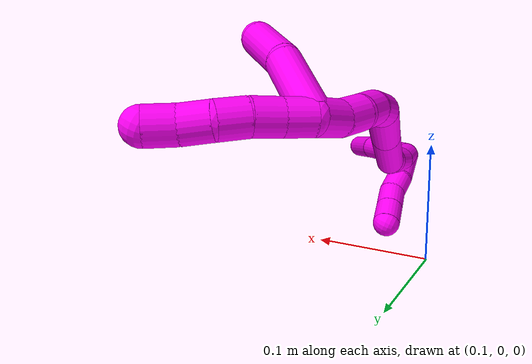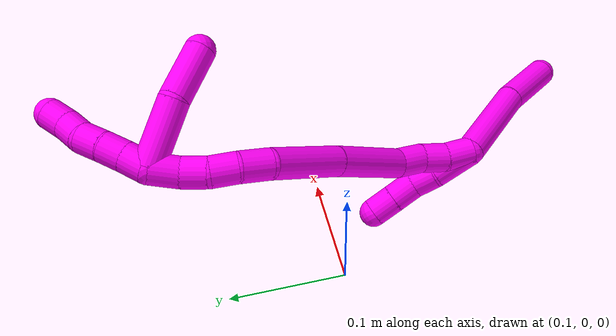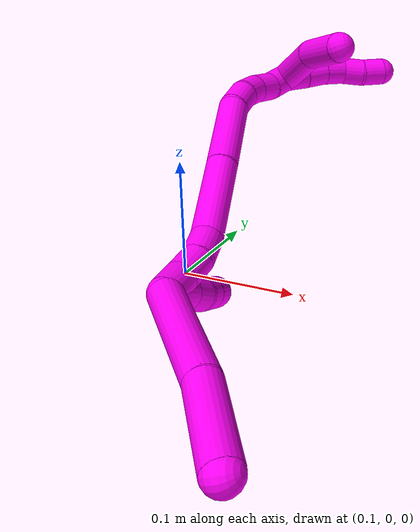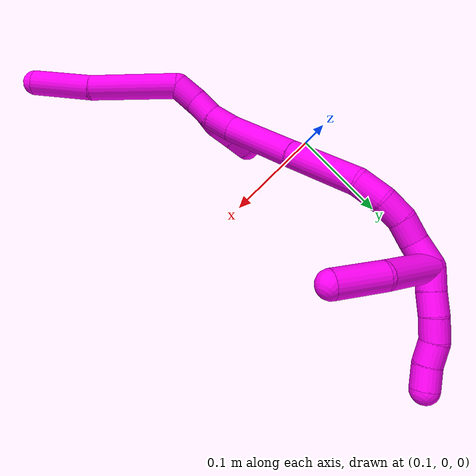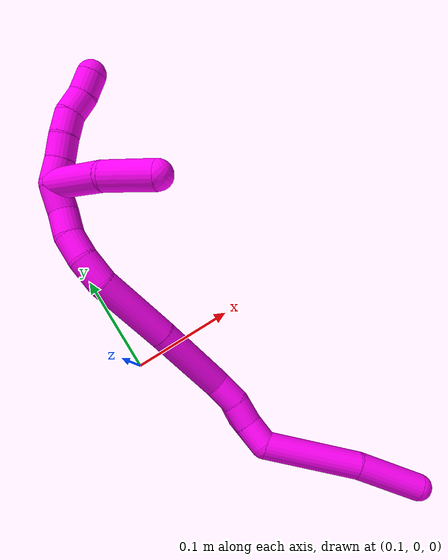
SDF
<sdf version="1.7">
 <world name="default">
  <model name="10">
   <static>0</static>
   <link name="10">
    <collision name="collision-cylinder-e_1_2_8">
     <pose>0.01236 -0.03577 0.022661 1.00611 0.284015 0.157021</pose>
     <geometry><cylinder><radius>0.0125</radius><length>0.088222</length></cylinder></geometry>
     <surface>
      <friction><ode><mu>1.16</mu><mu2>1.16</mu2><slip1>0</slip1><slip2>0</slip2></ode></friction>
      <contact><ode><kp>1e+06</kp><kd>1</kd><max_vel>0</max_vel><min_depth>0.001</min_depth></ode></contact>
     </surface>
    </collision>
    <visual name="visual-cylinder-e_1_2_8">
     <pose>0.01236 -0.03577 0.022661 1.00611 0.284015 0.157021</pose>
     <geometry><cylinder><radius>0.0125</radius><length>0.088222</length></cylinder></geometry>
     <material><ambient>1 0 0.964706 1</ambient></material>
    </visual>
    <collision name="collision-cylinder-e_2_8_6">
     <pose>0.03397 -0.098508 0.05721 1.15558 0.3041 0.199159</pose>
     <geometry><cylinder><radius>0.0125</radius><length>0.061778</length></cylinder></geometry>
     <surface>
      <friction><ode><mu>1.16</mu><mu2>1.16</mu2><slip1>0</slip1><slip2>0</slip2></ode></friction>
      <contact><ode><kp>1e+06</kp><kd>1</kd><max_vel>0</max_vel><min_depth>0.001</min_depth></ode></contact>
     </surface>
    </collision>
    <visual name="visual-cylinder-e_2_8_6">
     <pose>0.03397 -0.098508 0.05721 1.15558 0.3041 0.199159</pose>
     <geometry><cylinder><radius>0.0125</radius><length>0.061778</length></cylinder></geometry>
     <material><ambient>1 0 0.964706 1</ambient></material>
    </visual>
    <collision name="collision-cylinder-e_1_2_9">
     <pose>0.008755 0.015609 -0.002976 -1.75921 0.503577 -0.602916</pose>
     <geometry><cylinder><radius>0.0125</radius><length>0.036284</length></cylinder></geometry>
     <surface>
      <friction><ode><mu>1.16</mu><mu2>1.16</mu2><slip1>0</slip1><slip2>0</slip2></ode></friction>
      <contact><ode><kp>1e+06</kp><kd>1</kd><max_vel>0</max_vel><min_depth>0.001</min_depth></ode></contact>
     </surface>
    </collision>
    <visual name="visual-cylinder-e_1_2_9">
     <pose>0.008755 0.015609 -0.002976 -1.75921 0.503577 -0.602916</pose>
     <geometry><cylinder><radius>0.0125</radius><length>0.036284</length></cylinder></geometry>
     <material><ambient>1 0 0.964706 1</ambient></material>
    </visual>
    <collision name="collision-cylinder-e_2_9_10">
     <pose>0.023412 0.039624 -0.006148 -1.59404 0.612104 -0.625586</pose>
     <geometry><cylinder><radius>0.0125</radius><length>0.020547</length></cylinder></geometry>
     <surface>
      <friction><ode><mu>1.16</mu><mu2>1.16</mu2><slip1>0</slip1><slip2>0</slip2></ode></friction>
      <contact><ode><kp>1e+06</kp><kd>1</kd><max_vel>0</max_vel><min_depth>0.001</min_depth></ode></contact>
     </surface>
    </collision>
    <visual name="visual-cylinder-e_2_9_10">
     <pose>0.023412 0.039624 -0.006148 -1.59404 0.612104 -0.625586</pose>
     <geometry><cylinder><radius>0.0125</radius><length>0.020547</length></cylinder></geometry>
     <material><ambient>1 0 0.964706 1</ambient></material>
    </visual>
    <collision name="collision-cylinder-e_3_10_11">
     <pose>0.03403 0.057653 -0.008917 -1.8321 0.442025 -0.569421</pose>
     <geometry><cylinder><radius>0.0125</radius><length>0.022043</length></cylinder></geometry>
     <surface>
      <friction><ode><mu>1.16</mu><mu2>1.16</mu2><slip1>0</slip1><slip2>0</slip2></ode></friction>
      <contact><ode><kp>1e+06</kp><kd>1</kd><max_vel>0</max_vel><min_depth>0.001</min_depth></ode></contact>
     </surface>
    </collision>
    <visual name="visual-cylinder-e_3_10_11">
     <pose>0.03403 0.057653 -0.008917 -1.8321 0.442025 -0.569421</pose>
     <geometry><cylinder><radius>0.0125</radius><length>0.022043</length></cylinder></geometry>
     <material><ambient>1 0 0.964706 1</ambient></material>
    </visual>
    <collision name="collision-cylinder-e_4_11_5">
     <pose>0.04331 0.076503 -0.013859 -1.82205 0.446979 -0.570031</pose>
     <geometry><cylinder><radius>0.0125</radius><length>0.021126</length></cylinder></geometry>
     <surface>
      <friction><ode><mu>1.16</mu><mu2>1.16</mu2><slip1>0</slip1><slip2>0</slip2></ode></friction>
      <contact><ode><kp>1e+06</kp><kd>1</kd><max_vel>0</max_vel><min_depth>0.001</min_depth></ode></contact>
     </surface>
    </collision>
    <visual name="visual-cylinder-e_4_11_5">
     <pose>0.04331 0.076503 -0.013859 -1.82205 0.446979 -0.570031</pose>
     <geometry><cylinder><radius>0.0125</radius><length>0.021126</length></cylinder></geometry>
     <material><ambient>1 0 0.964706 1</ambient></material>
    </visual>
    <collision name="collision-cylinder-e_1_2_12">
     <pose>0.000756 0.011843 0.000517 -1.52721 0.063684 -0.060969</pose>
     <geometry><cylinder><radius>0.0125</radius><length>0.023757</length></cylinder></geometry>
     <surface>
      <friction><ode><mu>1.16</mu><mu2>1.16</mu2><slip1>0</slip1><slip2>0</slip2></ode></friction>
      <contact><ode><kp>1e+06</kp><kd>1</kd><max_vel>0</max_vel><min_depth>0.001</min_depth></ode></contact>
     </surface>
    </collision>
    <visual name="visual-cylinder-e_1_2_12">
     <pose>0.000756 0.011843 0.000517 -1.52721 0.063684 -0.060969</pose>
     <geometry><cylinder><radius>0.0125</radius><length>0.023757</length></cylinder></geometry>
     <material><ambient>1 0 0.964706 1</ambient></material>
    </visual>
    <collision name="collision-cylinder-e_2_12_13">
     <pose>0.000929 0.034657 0.003532 -1.34683 -0.05172 0.041267</pose>
     <geometry><cylinder><radius>0.0125</radius><length>0.022534</length></cylinder></geometry>
     <surface>
      <friction><ode><mu>1.16</mu><mu2>1.16</mu2><slip1>0</slip1><slip2>0</slip2></ode></friction>
      <contact><ode><kp>1e+06</kp><kd>1</kd><max_vel>0</max_vel><min_depth>0.001</min_depth></ode></contact>
     </surface>
    </collision>
    <visual name="visual-cylinder-e_2_12_13">
     <pose>0.000929 0.034657 0.003532 -1.34683 -0.05172 0.041267</pose>
     <geometry><cylinder><radius>0.0125</radius><length>0.022534</length></cylinder></geometry>
     <material><ambient>1 0 0.964706 1</ambient></material>
    </visual>
    <collision name="collision-cylinder-e_3_13_14">
     <pose>-0.001813 0.057754 0.006059 -1.56846 -0.176257 0.175848</pose>
     <geometry><cylinder><radius>0.0125</radius><length>0.024634</length></cylinder></geometry>
     <surface>
      <friction><ode><mu>1.16</mu><mu2>1.16</mu2><slip1>0</slip1><slip2>0</slip2></ode></friction>
      <contact><ode><kp>1e+06</kp><kd>1</kd><max_vel>0</max_vel><min_depth>0.001</min_depth></ode></contact>
     </surface>
    </collision>
    <visual name="visual-cylinder-e_3_13_14">
     <pose>-0.001813 0.057754 0.006059 -1.56846 -0.176257 0.175848</pose>
     <geometry><cylinder><radius>0.0125</radius><length>0.024634</length></cylinder></geometry>
     <material><ambient>1 0 0.964706 1</ambient></material>
    </visual>
    <collision name="collision-cylinder-e_4_14_15">
     <pose>-0.020345 0.100573 0.008758 -1.48402 -0.488449 0.449213</pose>
     <geometry><cylinder><radius>0.0125</radius><length>0.069779</length></cylinder></geometry>
     <surface>
      <friction><ode><mu>1.16</mu><mu2>1.16</mu2><slip1>0</slip1><slip2>0</slip2></ode></friction>
      <contact><ode><kp>1e+06</kp><kd>1</kd><max_vel>0</max_vel><min_depth>0.001</min_depth></ode></contact>
     </surface>
    </collision>
    <visual name="visual-cylinder-e_4_14_15">
     <pose>-0.020345 0.100573 0.008758 -1.48402 -0.488449 0.449213</pose>
     <geometry><cylinder><radius>0.0125</radius><length>0.069779</length></cylinder></geometry>
     <material><ambient>1 0 0.964706 1</ambient></material>
    </visual>
    <collision name="collision-cylinder-e_5_15_16">
     <pose>-0.051197 0.161399 0.012631 -1.53088 -0.447662 0.430687</pose>
     <geometry><cylinder><radius>0.0125</radius><length>0.066904</length></cylinder></geometry>
     <surface>
      <friction><ode><mu>1.16</mu><mu2>1.16</mu2><slip1>0</slip1><slip2>0</slip2></ode></friction>
      <contact><ode><kp>1e+06</kp><kd>1</kd><max_vel>0</max_vel><min_depth>0.001</min_depth></ode></contact>
     </surface>
    </collision>
    <visual name="visual-cylinder-e_5_15_16">
     <pose>-0.051197 0.161399 0.012631 -1.53088 -0.447662 0.430687</pose>
     <geometry><cylinder><radius>0.0125</radius><length>0.066904</length></cylinder></geometry>
     <material><ambient>1 0 0.964706 1</ambient></material>
    </visual>
    <collision name="collision-cylinder-e_6_16_17">
     <pose>-0.067347 0.204089 0.015188 -1.46346 -0.131465 0.118094</pose>
     <geometry><cylinder><radius>0.0125</radius><length>0.025483</length></cylinder></geometry>
     <surface>
      <friction><ode><mu>1.16</mu><mu2>1.16</mu2><slip1>0</slip1><slip2>0</slip2></ode></friction>
      <contact><ode><kp>1e+06</kp><kd>1</kd><max_vel>0</max_vel><min_depth>0.001</min_depth></ode></contact>
     </surface>
    </collision>
    <visual name="visual-cylinder-e_6_16_17">
     <pose>-0.067347 0.204089 0.015188 -1.46346 -0.131465 0.118094</pose>
     <geometry><cylinder><radius>0.0125</radius><length>0.025483</length></cylinder></geometry>
     <material><ambient>1 0 0.964706 1</ambient></material>
    </visual>
    <collision name="collision-cylinder-e_7_17_18">
     <pose>-0.067789 0.227378 0.018037 -1.43227 0.112936 -0.098308</pose>
     <geometry><cylinder><radius>0.0125</radius><length>0.021806</length></cylinder></geometry>
     <surface>
      <friction><ode><mu>1.16</mu><mu2>1.16</mu2><slip1>0</slip1><slip2>0</slip2></ode></friction>
      <contact><ode><kp>1e+06</kp><kd>1</kd><max_vel>0</max_vel><min_depth>0.001</min_depth></ode></contact>
     </surface>
    </collision>
    <visual name="visual-cylinder-e_7_17_18">
     <pose>-0.067789 0.227378 0.018037 -1.43227 0.112936 -0.098308</pose>
     <geometry><cylinder><radius>0.0125</radius><length>0.021806</length></cylinder></geometry>
     <material><ambient>1 0 0.964706 1</ambient></material>
    </visual>
    <collision name="collision-cylinder-e_8_18_19">
     <pose>-0.063792 0.247679 0.023316 -1.19444 0.262724 -0.179223</pose>
     <geometry><cylinder><radius>0.0125</radius><length>0.021316</length></cylinder></geometry>
     <surface>
      <friction><ode><mu>1.16</mu><mu2>1.16</mu2><slip1>0</slip1><slip2>0</slip2></ode></friction>
      <contact><ode><kp>1e+06</kp><kd>1</kd><max_vel>0</max_vel><min_depth>0.001</min_depth></ode></contact>
     </surface>
    </collision>
    <visual name="visual-cylinder-e_8_18_19">
     <pose>-0.063792 0.247679 0.023316 -1.19444 0.262724 -0.179223</pose>
     <geometry><cylinder><radius>0.0125</radius><length>0.021316</length></cylinder></geometry>
     <material><ambient>1 0 0.964706 1</ambient></material>
    </visual>
    <collision name="collision-cylinder-e_9_19_1">
     <pose>-0.060583 0.268071 0.032019 -1.14397 0.037063 -0.023862</pose>
     <geometry><cylinder><radius>0.0125</radius><length>0.023788</length></cylinder></geometry>
     <surface>
      <friction><ode><mu>1.16</mu><mu2>1.16</mu2><slip1>0</slip1><slip2>0</slip2></ode></friction>
      <contact><ode><kp>1e+06</kp><kd>1</kd><max_vel>0</max_vel><min_depth>0.001</min_depth></ode></contact>
     </surface>
    </collision>
    <visual name="visual-cylinder-e_9_19_1">
     <pose>-0.060583 0.268071 0.032019 -1.14397 0.037063 -0.023862</pose>
     <geometry><cylinder><radius>0.0125</radius><length>0.023788</length></cylinder></geometry>
     <material><ambient>1 0 0.964706 1</ambient></material>
    </visual>
    <collision name="collision-cylinder-e_1_1_20">
     <pose>-0.057341 0.284862 0.044456 -0.671431 0.283978 -0.099675</pose>
     <geometry><cylinder><radius>0.0125</radius><length>0.02</length></cylinder></geometry>
     <surface>
      <friction><ode><mu>1.16</mu><mu2>1.16</mu2><slip1>0</slip1><slip2>0</slip2></ode></friction>
      <contact><ode><kp>1e+06</kp><kd>1</kd><max_vel>0</max_vel><min_depth>0.001</min_depth></ode></contact>
     </surface>
    </collision>
    <visual name="visual-cylinder-e_1_1_20">
     <pose>-0.057341 0.284862 0.044456 -0.671431 0.283978 -0.099675</pose>
     <geometry><cylinder><radius>0.0125</radius><length>0.02</length></cylinder></geometry>
     <material><ambient>1 0 0.964706 1</ambient></material>
    </visual>
    <collision name="collision-cylinder-e_2_20_21">
     <pose>-0.052146 0.297305 0.05921 -0.729448 0.241672 -0.092657</pose>
     <geometry><cylinder><radius>0.0125</radius><length>0.02</length></cylinder></geometry>
     <surface>
      <friction><ode><mu>1.16</mu><mu2>1.16</mu2><slip1>0</slip1><slip2>0</slip2></ode></friction>
      <contact><ode><kp>1e+06</kp><kd>1</kd><max_vel>0</max_vel><min_depth>0.001</min_depth></ode></contact>
     </surface>
    </collision>
    <visual name="visual-cylinder-e_2_20_21">
     <pose>-0.052146 0.297305 0.05921 -0.729448 0.241672 -0.092657</pose>
     <geometry><cylinder><radius>0.0125</radius><length>0.02</length></cylinder></geometry>
     <material><ambient>1 0 0.964706 1</ambient></material>
    </visual>
    <collision name="collision-cylinder-e_3_21_22">
     <pose>-0.046145 0.30983 0.073543 -0.706468 0.369006 -0.1374</pose>
     <geometry><cylinder><radius>0.0125</radius><length>0.02</length></cylinder></geometry>
     <surface>
      <friction><ode><mu>1.16</mu><mu2>1.16</mu2><slip1>0</slip1><slip2>0</slip2></ode></friction>
      <contact><ode><kp>1e+06</kp><kd>1</kd><max_vel>0</max_vel><min_depth>0.001</min_depth></ode></contact>
     </surface>
    </collision>
    <visual name="visual-cylinder-e_3_21_22">
     <pose>-0.046145 0.30983 0.073543 -0.706468 0.369006 -0.1374</pose>
     <geometry><cylinder><radius>0.0125</radius><length>0.02</length></cylinder></geometry>
     <material><ambient>1 0 0.964706 1</ambient></material>
    </visual>
    <collision name="collision-cylinder-e_4_22_23">
     <pose>-0.037873 0.319177 0.088847 -0.381411 0.485379 -0.095514</pose>
     <geometry><cylinder><radius>0.0125</radius><length>0.02</length></cylinder></geometry>
     <surface>
      <friction><ode><mu>1.16</mu><mu2>1.16</mu2><slip1>0</slip1><slip2>0</slip2></ode></friction>
      <contact><ode><kp>1e+06</kp><kd>1</kd><max_vel>0</max_vel><min_depth>0.001</min_depth></ode></contact>
     </surface>
    </collision>
    <visual name="visual-cylinder-e_4_22_23">
     <pose>-0.037873 0.319177 0.088847 -0.381411 0.485379 -0.095514</pose>
     <geometry><cylinder><radius>0.0125</radius><length>0.02</length></cylinder></geometry>
     <material><ambient>1 0 0.964706 1</ambient></material>
    </visual>
    <collision name="collision-cylinder-e_5_23_4">
     <pose>-0.029769 0.327337 0.105087 -0.544963 0.350996 -0.099018</pose>
     <geometry><cylinder><radius>0.0125</radius><length>0.02</length></cylinder></geometry>
     <surface>
      <friction><ode><mu>1.16</mu><mu2>1.16</mu2><slip1>0</slip1><slip2>0</slip2></ode></friction>
      <contact><ode><kp>1e+06</kp><kd>1</kd><max_vel>0</max_vel><min_depth>0.001</min_depth></ode></contact>
     </surface>
    </collision>
    <visual name="visual-cylinder-e_5_23_4">
     <pose>-0.029769 0.327337 0.105087 -0.544963 0.350996 -0.099018</pose>
     <geometry><cylinder><radius>0.0125</radius><length>0.02</length></cylinder></geometry>
     <material><ambient>1 0 0.964706 1</ambient></material>
    </visual>
    <collision name="collision-cylinder-e_1_1_24">
     <pose>-0.06902 0.2633 0.057349 0.652349 -0.332826 -0.113509</pose>
     <geometry><cylinder><radius>0.0125</radius><length>0.054347</length></cylinder></geometry>
     <surface>
      <friction><ode><mu>1.16</mu><mu2>1.16</mu2><slip1>0</slip1><slip2>0</slip2></ode></friction>
      <contact><ode><kp>1e+06</kp><kd>1</kd><max_vel>0</max_vel><min_depth>0.001</min_depth></ode></contact>
     </surface>
    </collision>
    <visual name="visual-cylinder-e_1_1_24">
     <pose>-0.06902 0.2633 0.057349 0.652349 -0.332826 -0.113509</pose>
     <geometry><cylinder><radius>0.0125</radius><length>0.054347</length></cylinder></geometry>
     <material><ambient>1 0 0.964706 1</ambient></material>
    </visual>
    <collision name="collision-cylinder-e_2_24_3">
     <pose>-0.078959 0.232304 0.094569 0.741763 -0.046464 -0.018072</pose>
     <geometry><cylinder><radius>0.0125</radius><length>0.045653</length></cylinder></geometry>
     <surface>
      <friction><ode><mu>1.16</mu><mu2>1.16</mu2><slip1>0</slip1><slip2>0</slip2></ode></friction>
      <contact><ode><kp>1e+06</kp><kd>1</kd><max_vel>0</max_vel><min_depth>0.001</min_depth></ode></contact>
     </surface>
    </collision>
    <visual name="visual-cylinder-e_2_24_3">
     <pose>-0.078959 0.232304 0.094569 0.741763 -0.046464 -0.018072</pose>
     <geometry><cylinder><radius>0.0125</radius><length>0.045653</length></cylinder></geometry>
     <material><ambient>1 0 0.964706 1</ambient></material>
    </visual>
    <collision name="collision-sphere-3">
     <pose>-0.080019 0.2169 0.11138 0 -0 0</pose>
     <geometry><sphere><radius>0.0125</radius></sphere></geometry>
     <surface>
      <friction><ode><mu>1.16</mu><mu2>1.16</mu2><slip1>0</slip1><slip2>0</slip2></ode></friction>
      <contact><ode><kp>1e+06</kp><kd>1</kd><max_vel>0</max_vel><min_depth>0.001</min_depth></ode></contact>
     </surface>
    </collision>
    <visual name="visual-sphere-3">
     <pose>-0.080019 0.2169 0.11138 0 -0 0</pose>
     <geometry><sphere><radius>0.0125</radius></sphere></geometry>
     <material><ambient>1 0 0.964706 1</ambient></material>
    </visual>
    <collision name="collision-sphere-24">
     <pose>-0.077899 0.247709 0.077757 0 -0 0</pose>
     <geometry><sphere><radius>0.0125</radius></sphere></geometry>
     <surface>
      <friction><ode><mu>1.16</mu><mu2>1.16</mu2><slip1>0</slip1><slip2>0</slip2></ode></friction>
      <contact><ode><kp>1e+06</kp><kd>1</kd><max_vel>0</max_vel><min_depth>0.001</min_depth></ode></contact>
     </surface>
    </collision>
    <visual name="visual-sphere-24">
     <pose>-0.077899 0.247709 0.077757 0 -0 0</pose>
     <geometry><sphere><radius>0.0125</radius></sphere></geometry>
     <material><ambient>1 0 0.964706 1</ambient></material>
    </visual>
    <collision name="collision-sphere-4">
     <pose>-0.026331 0.332205 0.113117 0 -0 0</pose>
     <geometry><sphere><radius>0.0125</radius></sphere></geometry>
     <surface>
      <friction><ode><mu>1.16</mu><mu2>1.16</mu2><slip1>0</slip1><slip2>0</slip2></ode></friction>
      <contact><ode><kp>1e+06</kp><kd>1</kd><max_vel>0</max_vel><min_depth>0.001</min_depth></ode></contact>
     </surface>
    </collision>
    <visual name="visual-sphere-4">
     <pose>-0.026331 0.332205 0.113117 0 -0 0</pose>
     <geometry><sphere><radius>0.0125</radius></sphere></geometry>
     <material><ambient>1 0 0.964706 1</ambient></material>
    </visual>
    <collision name="collision-sphere-23">
     <pose>-0.033208 0.32247 0.097057 0 -0 0</pose>
     <geometry><sphere><radius>0.0125</radius></sphere></geometry>
     <surface>
      <friction><ode><mu>1.16</mu><mu2>1.16</mu2><slip1>0</slip1><slip2>0</slip2></ode></friction>
      <contact><ode><kp>1e+06</kp><kd>1</kd><max_vel>0</max_vel><min_depth>0.001</min_depth></ode></contact>
     </surface>
    </collision>
    <visual name="visual-sphere-23">
     <pose>-0.033208 0.32247 0.097057 0 -0 0</pose>
     <geometry><sphere><radius>0.0125</radius></sphere></geometry>
     <material><ambient>1 0 0.964706 1</ambient></material>
    </visual>
    <collision name="collision-sphere-22">
     <pose>-0.042539 0.315885 0.080638 0 -0 0</pose>
     <geometry><sphere><radius>0.0125</radius></sphere></geometry>
     <surface>
      <friction><ode><mu>1.16</mu><mu2>1.16</mu2><slip1>0</slip1><slip2>0</slip2></ode></friction>
      <contact><ode><kp>1e+06</kp><kd>1</kd><max_vel>0</max_vel><min_depth>0.001</min_depth></ode></contact>
     </surface>
    </collision>
    <visual name="visual-sphere-22">
     <pose>-0.042539 0.315885 0.080638 0 -0 0</pose>
     <geometry><sphere><radius>0.0125</radius></sphere></geometry>
     <material><ambient>1 0 0.964706 1</ambient></material>
    </visual>
    <collision name="collision-sphere-21">
     <pose>-0.049752 0.303776 0.066449 0 -0 0</pose>
     <geometry><sphere><radius>0.0125</radius></sphere></geometry>
     <surface>
      <friction><ode><mu>1.16</mu><mu2>1.16</mu2><slip1>0</slip1><slip2>0</slip2></ode></friction>
      <contact><ode><kp>1e+06</kp><kd>1</kd><max_vel>0</max_vel><min_depth>0.001</min_depth></ode></contact>
     </surface>
    </collision>
    <visual name="visual-sphere-21">
     <pose>-0.049752 0.303776 0.066449 0 -0 0</pose>
     <geometry><sphere><radius>0.0125</radius></sphere></geometry>
     <material><ambient>1 0 0.964706 1</ambient></material>
    </visual>
    <collision name="collision-sphere-20">
     <pose>-0.054539 0.290834 0.051971 0 -0 0</pose>
     <geometry><sphere><radius>0.0125</radius></sphere></geometry>
     <surface>
      <friction><ode><mu>1.16</mu><mu2>1.16</mu2><slip1>0</slip1><slip2>0</slip2></ode></friction>
      <contact><ode><kp>1e+06</kp><kd>1</kd><max_vel>0</max_vel><min_depth>0.001</min_depth></ode></contact>
     </surface>
    </collision>
    <visual name="visual-sphere-20">
     <pose>-0.054539 0.290834 0.051971 0 -0 0</pose>
     <geometry><sphere><radius>0.0125</radius></sphere></geometry>
     <material><ambient>1 0 0.964706 1</ambient></material>
    </visual>
    <collision name="collision-sphere-11">
     <pose>0.038745 0.067277 -0.01149 0 -0 0</pose>
     <geometry><sphere><radius>0.0125</radius></sphere></geometry>
     <surface>
      <friction><ode><mu>1.16</mu><mu2>1.16</mu2><slip1>0</slip1><slip2>0</slip2></ode></friction>
      <contact><ode><kp>1e+06</kp><kd>1</kd><max_vel>0</max_vel><min_depth>0.001</min_depth></ode></contact>
     </surface>
    </collision>
    <visual name="visual-sphere-11">
     <pose>0.038745 0.067277 -0.01149 0 -0 0</pose>
     <geometry><sphere><radius>0.0125</radius></sphere></geometry>
     <material><ambient>1 0 0.964706 1</ambient></material>
    </visual>
    <collision name="collision-sphere-10">
     <pose>0.029316 0.04803 -0.006343 0 -0 0</pose>
     <geometry><sphere><radius>0.0125</radius></sphere></geometry>
     <surface>
      <friction><ode><mu>1.16</mu><mu2>1.16</mu2><slip1>0</slip1><slip2>0</slip2></ode></friction>
      <contact><ode><kp>1e+06</kp><kd>1</kd><max_vel>0</max_vel><min_depth>0.001</min_depth></ode></contact>
     </surface>
    </collision>
    <visual name="visual-sphere-10">
     <pose>0.029316 0.04803 -0.006343 0 -0 0</pose>
     <geometry><sphere><radius>0.0125</radius></sphere></geometry>
     <material><ambient>1 0 0.964706 1</ambient></material>
    </visual>
    <collision name="collision-sphere-6">
     <pose>0.043219 -0.125475 0.069098 0 -0 0</pose>
     <geometry><sphere><radius>0.0125</radius></sphere></geometry>
     <surface>
      <friction><ode><mu>1.16</mu><mu2>1.16</mu2><slip1>0</slip1><slip2>0</slip2></ode></friction>
      <contact><ode><kp>1e+06</kp><kd>1</kd><max_vel>0</max_vel><min_depth>0.001</min_depth></ode></contact>
     </surface>
    </collision>
    <visual name="visual-sphere-6">
     <pose>0.043219 -0.125475 0.069098 0 -0 0</pose>
     <geometry><sphere><radius>0.0125</radius></sphere></geometry>
     <material><ambient>1 0 0.964706 1</ambient></material>
    </visual>
    <collision name="collision-sphere-9">
     <pose>0.017509 0.031218 -0.005953 0 -0 0</pose>
     <geometry><sphere><radius>0.0125</radius></sphere></geometry>
     <surface>
      <friction><ode><mu>1.16</mu><mu2>1.16</mu2><slip1>0</slip1><slip2>0</slip2></ode></friction>
      <contact><ode><kp>1e+06</kp><kd>1</kd><max_vel>0</max_vel><min_depth>0.001</min_depth></ode></contact>
     </surface>
    </collision>
    <visual name="visual-sphere-9">
     <pose>0.017509 0.031218 -0.005953 0 -0 0</pose>
     <geometry><sphere><radius>0.0125</radius></sphere></geometry>
     <material><ambient>1 0 0.964706 1</ambient></material>
    </visual>
    <collision name="collision-sphere-2">
     <geometry><sphere><radius>0.0125</radius></sphere></geometry>
     <surface>
      <friction><ode><mu>1.16</mu><mu2>1.16</mu2><slip1>0</slip1><slip2>0</slip2></ode></friction>
      <contact><ode><kp>1e+06</kp><kd>1</kd><max_vel>0</max_vel><min_depth>0.001</min_depth></ode></contact>
     </surface>
    </collision>
    <visual name="visual-sphere-2">
     <geometry><sphere><radius>0.0125</radius></sphere></geometry>
     <material><ambient>1 0 0.964706 1</ambient></material>
    </visual>
    <collision name="collision-sphere-19">
     <pose>-0.061024 0.257251 0.027099 0 -0 0</pose>
     <geometry><sphere><radius>0.0125</radius></sphere></geometry>
     <surface>
      <friction><ode><mu>1.16</mu><mu2>1.16</mu2><slip1>0</slip1><slip2>0</slip2></ode></friction>
      <contact><ode><kp>1e+06</kp><kd>1</kd><max_vel>0</max_vel><min_depth>0.001</min_depth></ode></contact>
     </surface>
    </collision>
    <visual name="visual-sphere-19">
     <pose>-0.061024 0.257251 0.027099 0 -0 0</pose>
     <geometry><sphere><radius>0.0125</radius></sphere></geometry>
     <material><ambient>1 0 0.964706 1</ambient></material>
    </visual>
    <collision name="collision-sphere-8">
     <pose>0.024721 -0.07154 0.045321 0 -0 0</pose>
     <geometry><sphere><radius>0.0125</radius></sphere></geometry>
     <surface>
      <friction><ode><mu>1.16</mu><mu2>1.16</mu2><slip1>0</slip1><slip2>0</slip2></ode></friction>
      <contact><ode><kp>1e+06</kp><kd>1</kd><max_vel>0</max_vel><min_depth>0.001</min_depth></ode></contact>
     </surface>
    </collision>
    <visual name="visual-sphere-8">
     <pose>0.024721 -0.07154 0.045321 0 -0 0</pose>
     <geometry><sphere><radius>0.0125</radius></sphere></geometry>
     <material><ambient>1 0 0.964706 1</ambient></material>
    </visual>
    <collision name="collision-sphere-5">
     <pose>0.047876 0.08573 -0.016227 0 -0 0</pose>
     <geometry><sphere><radius>0.0125</radius></sphere></geometry>
     <surface>
      <friction><ode><mu>1.16</mu><mu2>1.16</mu2><slip1>0</slip1><slip2>0</slip2></ode></friction>
      <contact><ode><kp>1e+06</kp><kd>1</kd><max_vel>0</max_vel><min_depth>0.001</min_depth></ode></contact>
     </surface>
    </collision>
    <visual name="visual-sphere-5">
     <pose>0.047876 0.08573 -0.016227 0 -0 0</pose>
     <geometry><sphere><radius>0.0125</radius></sphere></geometry>
     <material><ambient>1 0 0.964706 1</ambient></material>
    </visual>
    <collision name="collision-sphere-12">
     <pose>0.001512 0.023686 0.001033 0 -0 0</pose>
     <geometry><sphere><radius>0.0125</radius></sphere></geometry>
     <surface>
      <friction><ode><mu>1.16</mu><mu2>1.16</mu2><slip1>0</slip1><slip2>0</slip2></ode></friction>
      <contact><ode><kp>1e+06</kp><kd>1</kd><max_vel>0</max_vel><min_depth>0.001</min_depth></ode></contact>
     </surface>
    </collision>
    <visual name="visual-sphere-12">
     <pose>0.001512 0.023686 0.001033 0 -0 0</pose>
     <geometry><sphere><radius>0.0125</radius></sphere></geometry>
     <material><ambient>1 0 0.964706 1</ambient></material>
    </visual>
    <collision name="collision-sphere-13">
     <pose>0.000347 0.045628 0.006031 0 -0 0</pose>
     <geometry><sphere><radius>0.0125</radius></sphere></geometry>
     <surface>
      <friction><ode><mu>1.16</mu><mu2>1.16</mu2><slip1>0</slip1><slip2>0</slip2></ode></friction>
      <contact><ode><kp>1e+06</kp><kd>1</kd><max_vel>0</max_vel><min_depth>0.001</min_depth></ode></contact>
     </surface>
    </collision>
    <visual name="visual-sphere-13">
     <pose>0.000347 0.045628 0.006031 0 -0 0</pose>
     <geometry><sphere><radius>0.0125</radius></sphere></geometry>
     <material><ambient>1 0 0.964706 1</ambient></material>
    </visual>
    <collision name="collision-sphere-14">
     <pose>-0.003972 0.06988 0.006088 0 -0 0</pose>
     <geometry><sphere><radius>0.0125</radius></sphere></geometry>
     <surface>
      <friction><ode><mu>1.16</mu><mu2>1.16</mu2><slip1>0</slip1><slip2>0</slip2></ode></friction>
      <contact><ode><kp>1e+06</kp><kd>1</kd><max_vel>0</max_vel><min_depth>0.001</min_depth></ode></contact>
     </surface>
    </collision>
    <visual name="visual-sphere-14">
     <pose>-0.003972 0.06988 0.006088 0 -0 0</pose>
     <geometry><sphere><radius>0.0125</radius></sphere></geometry>
     <material><ambient>1 0 0.964706 1</ambient></material>
    </visual>
    <collision name="collision-sphere-15">
     <pose>-0.036717 0.131267 0.011428 0 -0 0</pose>
     <geometry><sphere><radius>0.0125</radius></sphere></geometry>
     <surface>
      <friction><ode><mu>1.16</mu><mu2>1.16</mu2><slip1>0</slip1><slip2>0</slip2></ode></friction>
      <contact><ode><kp>1e+06</kp><kd>1</kd><max_vel>0</max_vel><min_depth>0.001</min_depth></ode></contact>
     </surface>
    </collision>
    <visual name="visual-sphere-15">
     <pose>-0.036717 0.131267 0.011428 0 -0 0</pose>
     <geometry><sphere><radius>0.0125</radius></sphere></geometry>
     <material><ambient>1 0 0.964706 1</ambient></material>
    </visual>
    <collision name="collision-sphere-16">
     <pose>-0.065677 0.191531 0.013835 0 -0 0</pose>
     <geometry><sphere><radius>0.0125</radius></sphere></geometry>
     <surface>
      <friction><ode><mu>1.16</mu><mu2>1.16</mu2><slip1>0</slip1><slip2>0</slip2></ode></friction>
      <contact><ode><kp>1e+06</kp><kd>1</kd><max_vel>0</max_vel><min_depth>0.001</min_depth></ode></contact>
     </surface>
    </collision>
    <visual name="visual-sphere-16">
     <pose>-0.065677 0.191531 0.013835 0 -0 0</pose>
     <geometry><sphere><radius>0.0125</radius></sphere></geometry>
     <material><ambient>1 0 0.964706 1</ambient></material>
    </visual>
    <collision name="collision-sphere-17">
     <pose>-0.069017 0.216648 0.016541 0 -0 0</pose>
     <geometry><sphere><radius>0.0125</radius></sphere></geometry>
     <surface>
      <friction><ode><mu>1.16</mu><mu2>1.16</mu2><slip1>0</slip1><slip2>0</slip2></ode></friction>
      <contact><ode><kp>1e+06</kp><kd>1</kd><max_vel>0</max_vel><min_depth>0.001</min_depth></ode></contact>
     </surface>
    </collision>
    <visual name="visual-sphere-17">
     <pose>-0.069017 0.216648 0.016541 0 -0 0</pose>
     <geometry><sphere><radius>0.0125</radius></sphere></geometry>
     <material><ambient>1 0 0.964706 1</ambient></material>
    </visual>
    <collision name="collision-sphere-18">
     <pose>-0.06656 0.238107 0.019533 0 -0 0</pose>
     <geometry><sphere><radius>0.0125</radius></sphere></geometry>
     <surface>
      <friction><ode><mu>1.16</mu><mu2>1.16</mu2><slip1>0</slip1><slip2>0</slip2></ode></friction>
      <contact><ode><kp>1e+06</kp><kd>1</kd><max_vel>0</max_vel><min_depth>0.001</min_depth></ode></contact>
     </surface>
    </collision>
    <visual name="visual-sphere-18">
     <pose>-0.06656 0.238107 0.019533 0 -0 0</pose>
     <geometry><sphere><radius>0.0125</radius></sphere></geometry>
     <material><ambient>1 0 0.964706 1</ambient></material>
    </visual>
    <collision name="collision-sphere-1">
     <pose>-0.060142 0.27889 0.03694 0 -0 0</pose>
     <geometry><sphere><radius>0.0125</radius></sphere></geometry>
     <surface>
      <friction><ode><mu>1.16</mu><mu2>1.16</mu2><slip1>0</slip1><slip2>0</slip2></ode></friction>
      <contact><ode><kp>1e+06</kp><kd>1</kd><max_vel>0</max_vel><min_depth>0.001</min_depth></ode></contact>
     </surface>
    </collision>
    <visual name="visual-sphere-1">
     <pose>-0.060142 0.27889 0.03694 0 -0 0</pose>
     <geometry><sphere><radius>0.0125</radius></sphere></geometry>
     <material><ambient>1 0 0.964706 1</ambient></material>
    </visual>
    <inertial>
     <pose>-0.022686 0.12377 0.031204 0 -0 0</pose>
     <mass>0.75</mass>
     <inertia>
      <ixx>0.000209</ixx>
      <ixy>0</ixy>
      <ixz>0</ixz>
      <iyy>0.000135</iyy>
      <iyz>0</iyz>
      <izz>2.5e-05</izz>
     </inertia>
    </inertial>
   </link>
   <pose>0.162921 -0.127623 0.055623 0.197494 1.19312 0.344903</pose>
  </model>
 </world>
</sdf>
